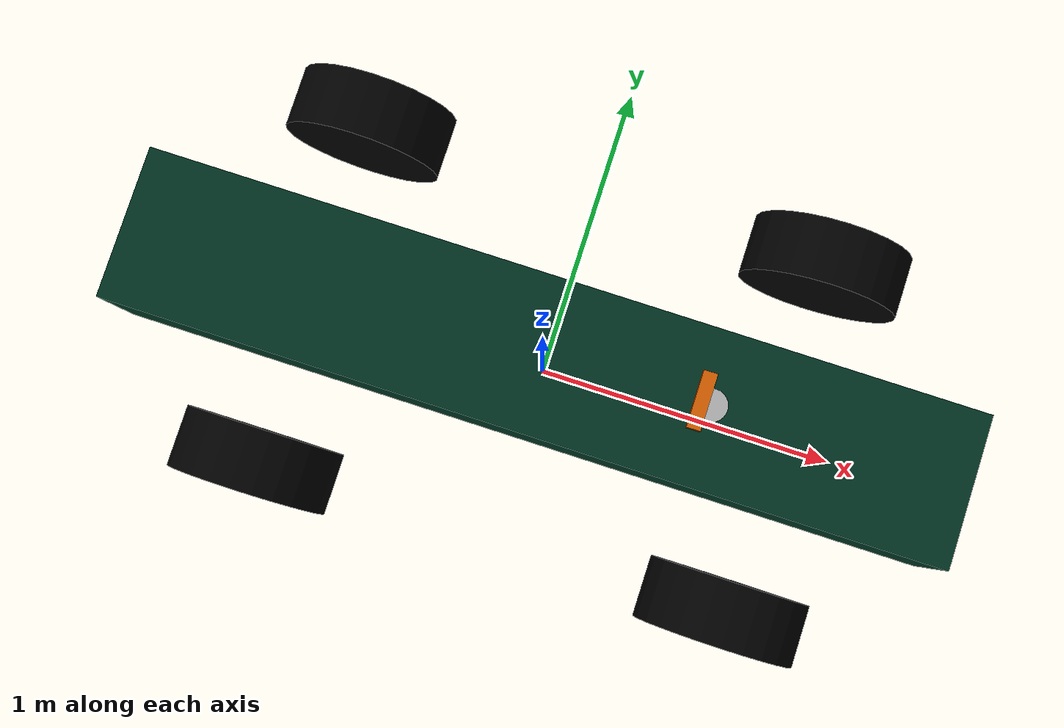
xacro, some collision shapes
<?xml version="1.0" ?>
<robot xmlns:xacro="http://www.ros.org/wiki/xacro" name="ads_dv">

    <!-- Wheels and Joints -->
    <xacro:include filename="/home/user/colcon_ws/src/simulation/models/vehicle/wheels.xacro" />

    <link name='chassis'>
        <inertial>
            <mass value="278"/>
            <inertia ixx="14.38" ixy="0" ixz="0" iyy="178.90" iyz="0" izz="175.68"/>
        </inertial>
        <visual name='visual'>
            <origin xyz="0 0 0"/>
            <geometry>
                <mesh filename="/home/user/colcon_ws/src/simulation/models/vehicle/ads-dv.stl" scale="1 1 1"/>
            </geometry>
            <material name="chassis_mat">
                <color rgba="0.0 0.2 0.13 1"/>
            </material>
        </visual>
        <collision name='collision'>
            <geometry>
                <box size="2.7 0.489 0.414"/>
            </geometry>
        </collision>
    </link>

    <!-- Depth Camera -->
    <xacro:include filename="/home/user/colcon_ws/src/simulation/models/vehicle/depth_camera.xacro" />

    <!-- Velodyne -->
    <xacro:include filename="/home/user/colcon_ws/src/simulation/models/vehicle/velodyne.xacro" />

    <!-- Base Link -->
    <link name='base_link'>
        <visual name="visual">
            <geometry>
                <box size="0.01 0.01 0.01"/>
            </geometry>
        </visual>
        <inertial> <!-- Needed to disable lumping -->
            <mass value="0.001"/>
            <inertia ixx="0.001" ixy="0" ixz="0" iyy="0.001" iyz="0" izz="0.001"/>
        </inertial>
    </link>

    <!-- Steering Links and Joints-->
    <link name="front_left_wheel_steering_link">
        <inertial>
            <mass value="0.001"/>
            <inertia ixx="0.001" ixy="0" ixz="0" iyy="0.001" iyz="0" izz="0.001"/>
        </inertial>
        <visual name="steering_link_visual">
            <geometry>
                <cylinder length="0.1" radius="0.03"/>
            </geometry>
        </visual>
    </link>

    <joint name="front_left_wheel_steering_joint" type="revolute">
        <parent link="chassis"/>
        <child link="front_left_wheel_steering_link"/>
        <axis xyz="0 0 1"/>
        <limit lower="-0.424250477138" upper="0.424250477138" velocity="10000" effort="10000"/>
        <origin xyz="0.767 0.57 -0.0235" rpy="0 0 0"/>
    </joint>

    <link name="front_right_wheel_steering_link">
        <inertial>
            <mass value="0.001"/>
            <inertia ixx="0.001" ixy="0" ixz="0" iyy="0.001" iyz="0" izz="0.001"/>
        </inertial>
        <visual name="steering_link_visual">
            <geometry>
                <cylinder length="0.1" radius="0.03"/>
            </geometry>
        </visual>
    </link>

    <joint name="front_right_wheel_steering_joint" type="revolute">
        <parent link="chassis"/>
        <child link="front_right_wheel_steering_link"/>
        <axis xyz="0 0 1"/>
        <limit lower="-0.424250477138" upper="0.424250477138" velocity="10000" effort="10000"/>
        <origin xyz="0.767 -0.57 -0.0235" rpy="0 0 0"/>
    </joint>

    <!-- Fixed Joints -->

    <joint name="base_to_camera" type="fixed">
        <parent link="base_link"/>
        <child link="camera_link"/>
        <origin xyz="0.4865 0 0.671" rpy="0 0 0"/>
    </joint>
    <gazebo reference='base_to_camera'>
        <preserveFixedJoint>True</preserveFixedJoint>
    </gazebo>

    <joint name="base_to_velodyne" type="fixed">
        <parent link="base_link"/>
        <child link="velodyne"/>
        <origin xyz="0.52 0 0.59946" rpy="0 0 0"/>
    </joint>
    <gazebo reference='base_to_velodyne'>
        <preserveFixedJoint>True</preserveFixedJoint>
    </gazebo>

    <joint name="base_to_chassis" type="fixed">
        <parent link="base_link"/>
        <child link="chassis"/>
        <origin xyz="0 0 0.307" rpy="0 0 0"/>
    </joint>
    <gazebo reference='base_to_chassis'>
        <preserveFixedJoint>True</preserveFixedJoint>
    </gazebo>

    <!-- Ackermann Steering Plugin -->
    <gazebo>
        <plugin filename="gz-sim-ackermann-steering-system" name="gz::sim::systems::AckermannSteering">
            <left_joint>front_left_wheel_joint</left_joint>
            <left_joint>rear_left_wheel_joint</left_joint>
            <right_joint>front_right_wheel_joint</right_joint>
            <right_joint>rear_right_wheel_joint</right_joint>
            <left_steering_joint>front_left_wheel_steering_joint</left_steering_joint>
            <right_steering_joint>front_right_wheel_steering_joint</right_steering_joint>
            <kingpin_width>1.0</kingpin_width> <!-- or 0.72 idk maybe change it later and see how it affects the simulation -->
            <steering_limit>0.424250477138</steering_limit>
            <wheel_base>1.534</wheel_base>
            <wheel_separation>1.2</wheel_separation>
            <wheel_radius>0.2575</wheel_radius>
            <topic>cmd_vel</topic>
            <min_velocity>0.0</min_velocity>
            <max_velocity>30.0</max_velocity>
            <min_acceleration>-5.2</min_acceleration>
            <max_acceleration>5.2</max_acceleration>
        </plugin>
    </gazebo>
</robot>

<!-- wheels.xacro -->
<robot xmlns:xacro="http://www.ros.org/wiki/xacro" name="vehicle_wheels">

    <!-- Wheel Macro -->
    <xacro:macro name="wheel" params="name parent x y z roll pitch yaw">
        <link name="${name}">
            <visual name="visual">
                <geometry>
                    <cylinder radius="0.2575" length="0.1965"/>
                </geometry>
                <material name="black">
                    <color rgba="0 0 0 1"/>
                </material>
            </visual>
            <collision>
                <geometry>
                    <cylinder radius="0.2575" length="0.1965"/>
                </geometry>
            </collision>
            <inertial>
                <mass value="5.5"/>
                <origin xyz="0 0 0" rpy="0 0 0"/>
                <inertia ixx="0.11207078795000001" ixy="0.0" ixz="0.0" iyy="0.11207078795000001" iyz="0.0" izz="0.1887470134"/>
            </inertial>
        </link>
        <joint name="${name}_joint" type="revolute">
            <parent link="${parent}"/>
            <child link="${name}"/>
            <origin xyz="${x} ${y} ${z}" rpy="${roll} ${pitch} ${yaw}"/>
            <axis xyz="0 0 1"/>
            <limit lower="-1.79769e+308" upper="1.79769e+308" velocity="10000" effort="10000"/>
        </joint>

    </xacro:macro>

    <!-- Front Left Wheel -->
    <xacro:wheel name="front_left_wheel" parent="front_left_wheel_steering_link" x="0" y="0" z="0" roll="-1.5707" pitch="0" yaw="0"/>

    <!-- Front Right Wheel -->
    <xacro:wheel name="front_right_wheel" parent="front_right_wheel_steering_link" x="0" y="0" z="0" roll="-1.5707" pitch="0" yaw="0"/>

    <!-- Rear Left Wheel -->
    <xacro:wheel name="rear_left_wheel" parent="chassis" x="-0.767" y="0.57" z="-0.0235" roll="-1.5707" pitch="0" yaw="0"/>

    <!-- Rear Right Wheel -->
    <xacro:wheel name="rear_right_wheel" parent="chassis" x="-0.767" y="-0.57" z="-0.0235" roll="-1.5707" pitch="0" yaw="0"/>

</robot>

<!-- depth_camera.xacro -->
<robot xmlns:xacro="http://www.ros.org/wiki/xacro" name="ZED-2i">
    <!-- Depth Camera -->
    <link name="camera_link">
        <visual name="visual">
            <geometry>
                <box size="0.0431 0.17525 0.03025"/>
            </geometry>
        </visual>
        <inertial>
            <mass value="0.001"/>
            <inertia ixx="0.001" ixy="0" ixz="0" iyy="0.001" iyz="0" izz="0.001"/>
        </inertial>
    </link>
    <link name="camera_link_optical">
        <inertial>
            <mass value="0.001"/>
            <inertia ixx="0.001" ixy="0" ixz="0" iyy="0.001" iyz="0" izz="0.001"/>
        </inertial>
        <sensor name="zed2i_depth_camera" type="depth_camera">
            <update_rate>30</update_rate>
            <topic>/zed2i/depth_camera</topic>
            <camera>
                <horizontal_fov>1.9198622</horizontal_fov> <!-- 110 degrees -->
                <image>
                    <width>1280</width>
                    <height>720</height>
                    <format>R_FLOAT32</format>
                </image>
                <clip>
                    <near>0.3</near>
                    <far>20.0</far>
                </clip>
                <noise>
                    <type>gaussian</type>
                    <mean>0.0</mean>
                    <stddev>0.007</stddev> <!-- idk where this comes from-->
                </noise>
                <distortion>
                    <k1>0.0</k1>
                    <k2>0.0</k2>
                    <k3>0.0</k3>
                    <p1>0.0</p1>
                    <p2>0.0</p2>
                </distortion>
            </camera>
        </sensor>
    </link>
    <joint name="camera_to_optical" type="fixed">
        <parent link="camera_link"/>
        <child link="camera_link_optical"/>
        <origin xyz="0 0 0" rpy="-1.5707963267948966 0 -1.5707963267948966"/>
    </joint>
    <gazebo reference='camera_to_optical'>
        <preserveFixedJoint>True</preserveFixedJoint>
    </gazebo>
</robot>

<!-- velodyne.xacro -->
<robot xmlns:xacro="http://www.ros.org/wiki/xacro" name="VLP-16">
    <!-- Velodyne -->
    <link name="velodyne">
        <visual name="visual">
            <geometry>
                <cylinder length="0.07" radius="0.05"/>
            </geometry>
        </visual>
        <inertial>
            <mass value="0.001"/>
            <inertia ixx="0.001" ixy="0" ixz="0" iyy="0.001" iyz="0" izz="0.001"/>
        </inertial>
        <sensor name='VLP-16' type='gpu_lidar'>"
            <topic>velodyne_points</topic>
            <update_rate>10</update_rate>
            <ray>
                <scan>
                    <horizontal>
                        <samples>1800</samples>
                        <resolution>0.003490659</resolution> <!-- 0.2 degrees -->
                        <min_angle>-3.14159265</min_angle>
                        <max_angle>3.14159265</max_angle>
                    </horizontal>
                    <vertical>
                        <samples>16</samples>
                        <resolution>0.034906585</resolution>
                        <min_angle>-0.26179938</min_angle>
                        <max_angle>0.26179939</max_angle>
                    </vertical>
                </scan>
                <range>
                    <min>0.1</min>
                    <max>100.0</max>
                    <resolution>0.002</resolution>
                </range>
            </ray>
            <always_on>1</always_on>
            <visualize>true</visualize>
        </sensor>
    </link>
</robot>
